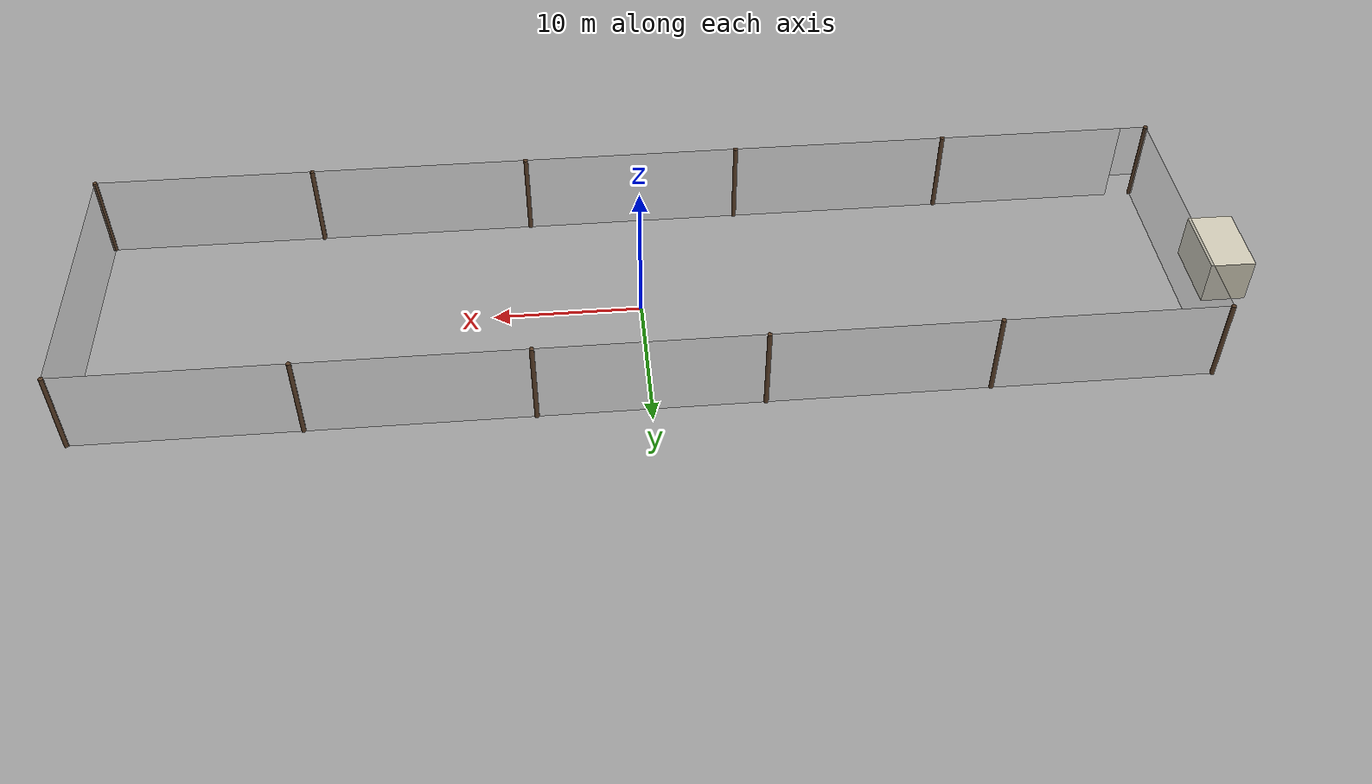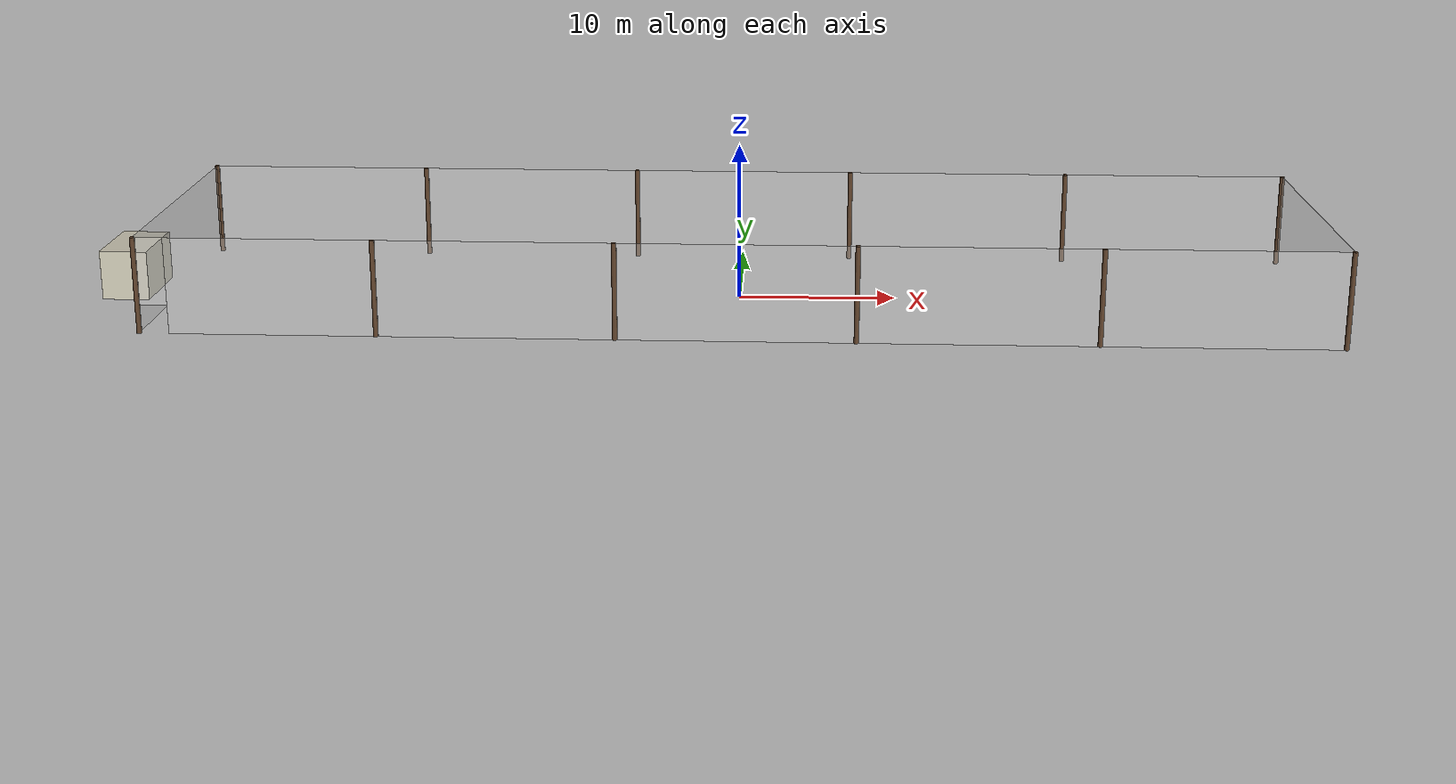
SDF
<sdf version="1.9">
 <world name="autonomy_park">
  <physics type="ode">
   <max_step_size>0.004</max_step_size>
   <real_time_factor>1.0</real_time_factor>
   <real_time_update_rate>250</real_time_update_rate>
   <dart><collision_detector>bullet</collision_detector></dart>
  </physics>
  <plugin name="gz::sim::systems::Physics" filename="gz-sim-physics-system"/>
  <plugin name="gz::sim::systems::UserCommands" filename="gz-sim-user-commands-system"/>
  <plugin name="gz::sim::systems::SceneBroadcaster" filename="gz-sim-scene-broadcaster-system"/>
  <plugin name="gz::sim::systems::Contact" filename="gz-sim-contact-system"/>
  <plugin name="gz::sim::systems::Imu" filename="gz-sim-imu-system"/>
  <plugin name="gz::sim::systems::AirPressure" filename="gz-sim-air-pressure-system"/>
  <plugin name="gz::sim::systems::Magnetometer" filename="gz-sim-magnetometer-system"/>
  <plugin name="gz::sim::systems::NavSat" filename="gz-sim-navsat-system"/>
  <plugin name="gz::sim::systems::Sensors" filename="gz-sim-sensors-system">
   <render_engine>ogre2</render_engine>
  </plugin>
  <gravity>0 0 -9.8</gravity>
  <magnetic_field>6e-06 2.3e-05 -4.2e-05</magnetic_field>
  <atmosphere type="adiabatic"/>
  <scene>
   <grid>false</grid>
   <ambient>0.35 0.35 0.35 1</ambient>
   <background>0.7 0.85 0.95 1</background>
   <shadows>true</shadows>
  </scene>
  <light type="directional" name="sun">
   <pose>36.576 -9.144 60 0 0 0</pose>
   <diffuse>0.55 0.53 0.48 1</diffuse>
   <specular>0 0 0 1</specular>
   <direction>-0.1 -0.2 -0.97</direction>
   <attenuation>
    <range>1000</range>
    <constant>0.9</constant>
    <linear>0.01</linear>
    <quadratic>0.001</quadratic>
   </attenuation>
  </light>
  <model name="lighting">
   <static>true</static>
   <link name="lights_link">
    <light type="point" name="fill_light_1">
     <cast_shadows>false</cast_shadows>
     <pose>21.576 -4.144 15 0 0 0</pose>
     <diffuse>0.85 0.85 0.78 1</diffuse>
     <specular>0 0 0 1</specular>
     <attenuation>
      <range>90</range>
      <constant>0.4</constant>
      <linear>0.015</linear>
      <quadratic>0.0008</quadratic>
     </attenuation>
    </light>
    <light type="point" name="fill_light_2">
     <cast_shadows>false</cast_shadows>
     <pose>21.576 4.356 15 0 0 0</pose>
     <diffuse>0.85 0.85 0.78 1</diffuse>
     <specular>0 0 0 1</specular>
     <attenuation>
      <range>90</range>
      <constant>0.4</constant>
      <linear>0.015</linear>
      <quadratic>0.0008</quadratic>
     </attenuation>
    </light>
    <light type="point" name="fill_light_3">
     <cast_shadows>false</cast_shadows>
     <pose>-3.424 -4.144 15 0 0 0</pose>
     <diffuse>0.85 0.85 0.78 1</diffuse>
     <specular>0 0 0 1</specular>
     <attenuation>
      <range>90</range>
      <constant>0.4</constant>
      <linear>0.015</linear>
      <quadratic>0.0008</quadratic>
     </attenuation>
    </light>
    <light type="point" name="fill_light_4">
     <cast_shadows>false</cast_shadows>
     <pose>-3.424 4.356 15 0 0 0</pose>
     <diffuse>0.85 0.85 0.78 1</diffuse>
     <specular>0 0 0 1</specular>
     <attenuation>
      <range>90</range>
      <constant>0.4</constant>
      <linear>0.015</linear>
      <quadratic>0.0008</quadratic>
     </attenuation>
    </light>
    <light type="point" name="fill_light_5">
     <cast_shadows>false</cast_shadows>
     <pose>-28.424 -4.144 15 0 0 0</pose>
     <diffuse>0.85 0.85 0.78 1</diffuse>
     <specular>0 0 0 1</specular>
     <attenuation>
      <range>90</range>
      <constant>0.4</constant>
      <linear>0.015</linear>
      <quadratic>0.0008</quadratic>
     </attenuation>
    </light>
    <light type="point" name="fill_light_6">
     <cast_shadows>false</cast_shadows>
     <pose>-28.424 4.356 15 0 0 0</pose>
     <diffuse>0.85 0.85 0.78 1</diffuse>
     <specular>0 0 0 1</specular>
     <attenuation>
      <range>90</range>
      <constant>0.4</constant>
      <linear>0.015</linear>
      <quadratic>0.0008</quadratic>
     </attenuation>
    </light>
   </link>
  </model>
  <model name="net">
   <static>true</static>
   <model name="pole_0">
    <static>true</static>
    <pose>-36.5760 -9.1440 3.0480 0 0 0</pose>
    <link name="link">
     <collision name="collision">
      <geometry><cylinder><radius>0.15</radius><length>6.0960</length></cylinder></geometry>
     </collision>
     <visual name="visual">
      <geometry><cylinder><radius>0.15</radius><length>6.0960</length></cylinder></geometry>
      <material>
       <ambient>0.36 0.25 0.16 1</ambient>
       <diffuse>0.36 0.25 0.16 1</diffuse>
       <specular>0 0 0 1</specular>
      </material>
     </visual>
    </link>
   </model>
   <model name="pole_1">
    <static>true</static>
    <pose>-36.5760 9.1440 3.0480 0 0 0</pose>
    <link name="link">
     <collision name="collision">
      <geometry><cylinder><radius>0.15</radius><length>6.0960</length></cylinder></geometry>
     </collision>
     <visual name="visual">
      <geometry><cylinder><radius>0.15</radius><length>6.0960</length></cylinder></geometry>
      <material>
       <ambient>0.36 0.25 0.16 1</ambient>
       <diffuse>0.36 0.25 0.16 1</diffuse>
       <specular>0 0 0 1</specular>
      </material>
     </visual>
    </link>
   </model>
   <model name="pole_2">
    <static>true</static>
    <pose>-21.9456 -9.1440 3.0480 0 0 0</pose>
    <link name="link">
     <collision name="collision">
      <geometry><cylinder><radius>0.15</radius><length>6.0960</length></cylinder></geometry>
     </collision>
     <visual name="visual">
      <geometry><cylinder><radius>0.15</radius><length>6.0960</length></cylinder></geometry>
      <material>
       <ambient>0.36 0.25 0.16 1</ambient>
       <diffuse>0.36 0.25 0.16 1</diffuse>
       <specular>0 0 0 1</specular>
      </material>
     </visual>
    </link>
   </model>
   <model name="pole_3">
    <static>true</static>
    <pose>-21.9456 9.1440 3.0480 0 0 0</pose>
    <link name="link">
     <collision name="collision">
      <geometry><cylinder><radius>0.15</radius><length>6.0960</length></cylinder></geometry>
     </collision>
     <visual name="visual">
      <geometry><cylinder><radius>0.15</radius><length>6.0960</length></cylinder></geometry>
      <material>
       <ambient>0.36 0.25 0.16 1</ambient>
       <diffuse>0.36 0.25 0.16 1</diffuse>
       <specular>0 0 0 1</specular>
      </material>
     </visual>
    </link>
   </model>
   <model name="pole_4">
    <static>true</static>
    <pose>-7.3152 -9.1440 3.0480 0 0 0</pose>
    <link name="link">
     <collision name="collision">
      <geometry><cylinder><radius>0.15</radius><length>6.0960</length></cylinder></geometry>
     </collision>
     <visual name="visual">
      <geometry><cylinder><radius>0.15</radius><length>6.0960</length></cylinder></geometry>
      <material>
       <ambient>0.36 0.25 0.16 1</ambient>
       <diffuse>0.36 0.25 0.16 1</diffuse>
       <specular>0 0 0 1</specular>
      </material>
     </visual>
    </link>
   </model>
   <model name="pole_5">
    <static>true</static>
    <pose>-7.3152 9.1440 3.0480 0 0 0</pose>
    <link name="link">
     <collision name="collision">
      <geometry><cylinder><radius>0.15</radius><length>6.0960</length></cylinder></geometry>
     </collision>
     <visual name="visual">
      <geometry><cylinder><radius>0.15</radius><length>6.0960</length></cylinder></geometry>
      <material>
       <ambient>0.36 0.25 0.16 1</ambient>
       <diffuse>0.36 0.25 0.16 1</diffuse>
       <specular>0 0 0 1</specular>
      </material>
     </visual>
    </link>
   </model>
   <model name="pole_6">
    <static>true</static>
    <pose>7.3152 -9.1440 3.0480 0 0 0</pose>
    <link name="link">
     <collision name="collision">
      <geometry><cylinder><radius>0.15</radius><length>6.0960</length></cylinder></geometry>
     </collision>
     <visual name="visual">
      <geometry><cylinder><radius>0.15</radius><length>6.0960</length></cylinder></geometry>
      <material>
       <ambient>0.36 0.25 0.16 1</ambient>
       <diffuse>0.36 0.25 0.16 1</diffuse>
       <specular>0 0 0 1</specular>
      </material>
     </visual>
    </link>
   </model>
   <model name="pole_7">
    <static>true</static>
    <pose>7.3152 9.1440 3.0480 0 0 0</pose>
    <link name="link">
     <collision name="collision">
      <geometry><cylinder><radius>0.15</radius><length>6.0960</length></cylinder></geometry>
     </collision>
     <visual name="visual">
      <geometry><cylinder><radius>0.15</radius><length>6.0960</length></cylinder></geometry>
      <material>
       <ambient>0.36 0.25 0.16 1</ambient>
       <diffuse>0.36 0.25 0.16 1</diffuse>
       <specular>0 0 0 1</specular>
      </material>
     </visual>
    </link>
   </model>
   <model name="pole_8">
    <static>true</static>
    <pose>21.9456 -9.1440 3.0480 0 0 0</pose>
    <link name="link">
     <collision name="collision">
      <geometry><cylinder><radius>0.15</radius><length>6.0960</length></cylinder></geometry>
     </collision>
     <visual name="visual">
      <geometry><cylinder><radius>0.15</radius><length>6.0960</length></cylinder></geometry>
      <material>
       <ambient>0.36 0.25 0.16 1</ambient>
       <diffuse>0.36 0.25 0.16 1</diffuse>
       <specular>0 0 0 1</specular>
      </material>
     </visual>
    </link>
   </model>
   <model name="pole_9">
    <static>true</static>
    <pose>21.9456 9.1440 3.0480 0 0 0</pose>
    <link name="link">
     <collision name="collision">
      <geometry><cylinder><radius>0.15</radius><length>6.0960</length></cylinder></geometry>
     </collision>
     <visual name="visual">
      <geometry><cylinder><radius>0.15</radius><length>6.0960</length></cylinder></geometry>
      <material>
       <ambient>0.36 0.25 0.16 1</ambient>
       <diffuse>0.36 0.25 0.16 1</diffuse>
       <specular>0 0 0 1</specular>
      </material>
     </visual>
    </link>
   </model>
   <model name="pole_10">
    <static>true</static>
    <pose>36.5760 -9.1440 3.0480 0 0 0</pose>
    <link name="link">
     <collision name="collision">
      <geometry><cylinder><radius>0.15</radius><length>6.0960</length></cylinder></geometry>
     </collision>
     <visual name="visual">
      <geometry><cylinder><radius>0.15</radius><length>6.0960</length></cylinder></geometry>
      <material>
       <ambient>0.36 0.25 0.16 1</ambient>
       <diffuse>0.36 0.25 0.16 1</diffuse>
       <specular>0 0 0 1</specular>
      </material>
     </visual>
    </link>
   </model>
   <model name="pole_11">
    <static>true</static>
    <pose>36.5760 9.1440 3.0480 0 0 0</pose>
    <link name="link">
     <collision name="collision">
      <geometry><cylinder><radius>0.15</radius><length>6.0960</length></cylinder></geometry>
     </collision>
     <visual name="visual">
      <geometry><cylinder><radius>0.15</radius><length>6.0960</length></cylinder></geometry>
      <material>
       <ambient>0.36 0.25 0.16 1</ambient>
       <diffuse>0.36 0.25 0.16 1</diffuse>
       <specular>0 0 0 1</specular>
      </material>
     </visual>
    </link>
   </model>
   <model name="net_west_0_main">
    <static>true</static>
    <pose>-28.3464 -9.1440 3.0480 0 0 1.570796</pose>
    <link name="link">
     <collision name="collision"><geometry><box><size>0.0200 12.8016 6.0960</size></box></geometry></collision>
     <visual name="visual">
      <geometry><box><size>0.0200 12.8016 6.0960</size></box></geometry>
      <material>
       <ambient>0.85 0.85 0.85 1</ambient>
       <diffuse>0.85 0.85 0.85 1</diffuse>
       <specular>0 0 0 1</specular>
      </material>
      <transparency>0.65</transparency>
     </visual>
    </link>
   </model>
   <model name="net_west_0_header">
    <static>true</static>
    <pose>-35.6616 -9.1440 3.9624 0 0 1.570796</pose>
    <link name="link">
     <collision name="collision"><geometry><box><size>0.0200 1.8288 4.2672</size></box></geometry></collision>
     <visual name="visual">
      <geometry><box><size>0.0200 1.8288 4.2672</size></box></geometry>
      <material>
       <ambient>0.85 0.85 0.85 1</ambient>
       <diffuse>0.85 0.85 0.85 1</diffuse>
       <specular>0 0 0 1</specular>
      </material>
      <transparency>0.65</transparency>
     </visual>
    </link>
   </model>
   <model name="net_west_1">
    <static>true</static>
    <pose>-14.6304 -9.1440 3.0480 0 0 1.570796</pose>
    <link name="link">
     <collision name="collision"><geometry><box><size>0.0200 14.6304 6.0960</size></box></geometry></collision>
     <visual name="visual">
      <geometry><box><size>0.0200 14.6304 6.0960</size></box></geometry>
      <material>
       <ambient>0.85 0.85 0.85 1</ambient>
       <diffuse>0.85 0.85 0.85 1</diffuse>
       <specular>0 0 0 1</specular>
      </material>
      <transparency>0.65</transparency>
     </visual>
    </link>
   </model>
   <model name="net_west_2">
    <static>true</static>
    <pose>-0.0000 -9.1440 3.0480 0 0 1.570796</pose>
    <link name="link">
     <collision name="collision"><geometry><box><size>0.0200 14.6304 6.0960</size></box></geometry></collision>
     <visual name="visual">
      <geometry><box><size>0.0200 14.6304 6.0960</size></box></geometry>
      <material>
       <ambient>0.85 0.85 0.85 1</ambient>
       <diffuse>0.85 0.85 0.85 1</diffuse>
       <specular>0 0 0 1</specular>
      </material>
      <transparency>0.65</transparency>
     </visual>
    </link>
   </model>
   <model name="net_west_3">
    <static>true</static>
    <pose>14.6304 -9.1440 3.0480 0 0 1.570796</pose>
    <link name="link">
     <collision name="collision"><geometry><box><size>0.0200 14.6304 6.0960</size></box></geometry></collision>
     <visual name="visual">
      <geometry><box><size>0.0200 14.6304 6.0960</size></box></geometry>
      <material>
       <ambient>0.85 0.85 0.85 1</ambient>
       <diffuse>0.85 0.85 0.85 1</diffuse>
       <specular>0 0 0 1</specular>
      </material>
      <transparency>0.65</transparency>
     </visual>
    </link>
   </model>
   <model name="net_west_4">
    <static>true</static>
    <pose>29.2608 -9.1440 3.0480 0 0 1.570796</pose>
    <link name="link">
     <collision name="collision"><geometry><box><size>0.0200 14.6304 6.0960</size></box></geometry></collision>
     <visual name="visual">
      <geometry><box><size>0.0200 14.6304 6.0960</size></box></geometry>
      <material>
       <ambient>0.85 0.85 0.85 1</ambient>
       <diffuse>0.85 0.85 0.85 1</diffuse>
       <specular>0 0 0 1</specular>
      </material>
      <transparency>0.65</transparency>
     </visual>
    </link>
   </model>
   <model name="net_east_0">
    <static>true</static>
    <pose>-29.2608 9.1440 3.0480 0 0 1.570796</pose>
    <link name="link">
     <collision name="collision"><geometry><box><size>0.0200 14.6304 6.0960</size></box></geometry></collision>
     <visual name="visual">
      <geometry><box><size>0.0200 14.6304 6.0960</size></box></geometry>
      <material>
       <ambient>0.85 0.85 0.85 1</ambient>
       <diffuse>0.85 0.85 0.85 1</diffuse>
       <specular>0 0 0 1</specular>
      </material>
      <transparency>0.65</transparency>
     </visual>
    </link>
   </model>
   <model name="net_east_1">
    <static>true</static>
    <pose>-14.6304 9.1440 3.0480 0 0 1.570796</pose>
    <link name="link">
     <collision name="collision"><geometry><box><size>0.0200 14.6304 6.0960</size></box></geometry></collision>
     <visual name="visual">
      <geometry><box><size>0.0200 14.6304 6.0960</size></box></geometry>
      <material>
       <ambient>0.85 0.85 0.85 1</ambient>
       <diffuse>0.85 0.85 0.85 1</diffuse>
       <specular>0 0 0 1</specular>
      </material>
      <transparency>0.65</transparency>
     </visual>
    </link>
   </model>
   <model name="net_east_2">
    <static>true</static>
    <pose>-0.0000 9.1440 3.0480 0 0 1.570796</pose>
    <link name="link">
     <collision name="collision"><geometry><box><size>0.0200 14.6304 6.0960</size></box></geometry></collision>
     <visual name="visual">
      <geometry><box><size>0.0200 14.6304 6.0960</size></box></geometry>
      <material>
       <ambient>0.85 0.85 0.85 1</ambient>
       <diffuse>0.85 0.85 0.85 1</diffuse>
       <specular>0 0 0 1</specular>
      </material>
      <transparency>0.65</transparency>
     </visual>
    </link>
   </model>
   <model name="net_east_3">
    <static>true</static>
    <pose>14.6304 9.1440 3.0480 0 0 1.570796</pose>
    <link name="link">
     <collision name="collision"><geometry><box><size>0.0200 14.6304 6.0960</size></box></geometry></collision>
     <visual name="visual">
      <geometry><box><size>0.0200 14.6304 6.0960</size></box></geometry>
      <material>
       <ambient>0.85 0.85 0.85 1</ambient>
       <diffuse>0.85 0.85 0.85 1</diffuse>
       <specular>0 0 0 1</specular>
      </material>
      <transparency>0.65</transparency>
     </visual>
    </link>
   </model>
   <model name="net_east_4">
    <static>true</static>
    <pose>29.2608 9.1440 3.0480 0 0 1.570796</pose>
    <link name="link">
     <collision name="collision"><geometry><box><size>0.0200 14.6304 6.0960</size></box></geometry></collision>
     <visual name="visual">
      <geometry><box><size>0.0200 14.6304 6.0960</size></box></geometry>
      <material>
       <ambient>0.85 0.85 0.85 1</ambient>
       <diffuse>0.85 0.85 0.85 1</diffuse>
       <specular>0 0 0 1</specular>
      </material>
      <transparency>0.65</transparency>
     </visual>
    </link>
   </model>
   <model name="net_south">
    <static>true</static>
    <pose>36.5760 0.0000 3.0480 0 0 1.570796</pose>
    <link name="link">
     <collision name="collision"><geometry><box><size>18.2880 0.0200 6.0960</size></box></geometry></collision>
     <visual name="visual">
      <geometry><box><size>18.2880 0.0200 6.0960</size></box></geometry>
      <material>
       <ambient>0.85 0.85 0.85 1</ambient>
       <diffuse>0.85 0.85 0.85 1</diffuse>
       <specular>0 0 0 1</specular>
      </material>
      <transparency>0.65</transparency>
     </visual>
    </link>
   </model>
   <model name="net_north">
    <static>true</static>
    <pose>-36.5760 0.0000 3.0480 0 0 1.570796</pose>
    <link name="link">
     <collision name="collision"><geometry><box><size>18.2880 0.0200 6.0960</size></box></geometry></collision>
     <visual name="visual">
      <geometry><box><size>18.2880 0.0200 6.0960</size></box></geometry>
      <material>
       <ambient>0.85 0.85 0.85 1</ambient>
       <diffuse>0.85 0.85 0.85 1</diffuse>
       <specular>0 0 0 1</specular>
      </material>
      <transparency>0.65</transparency>
     </visual>
    </link>
   </model>
  </model>
  <model name="portable_shed">
   <static>true</static>
   <pose>-39.6240 0.0000 1.6002 0 0 1.570796</pose>
   <link name="link">
    <collision name="collision"><geometry><box><size>4.8768 3.0480 3.2004</size></box></geometry></collision>
    <visual name="visual">
     <geometry><box><size>4.8768 3.0480 3.2004</size></box></geometry>
     <material>
      <ambient>0.82 0.80 0.72 1</ambient>
      <diffuse>0.82 0.80 0.72 1</diffuse>
      <specular>0.05 0.05 0.05 1</specular>
     </material>
    </visual>
   </link>
  </model>
  <spherical_coordinates>
   <surface_model>EARTH_WGS84</surface_model>
   <world_frame_orientation>ENU</world_frame_orientation>
   <latitude_deg>29.628147</latitude_deg>
   <longitude_deg>-82.360333</longitude_deg>
   <elevation>29.2059</elevation>
   <heading_deg>-34.5031</heading_deg>
  </spherical_coordinates>
 </world>
</sdf>
